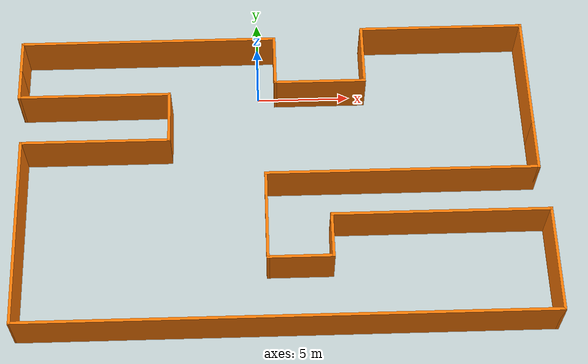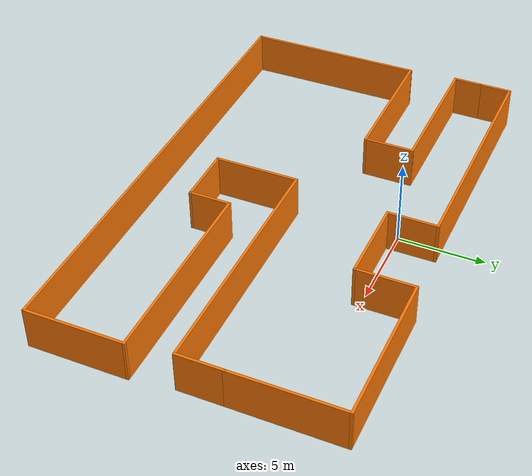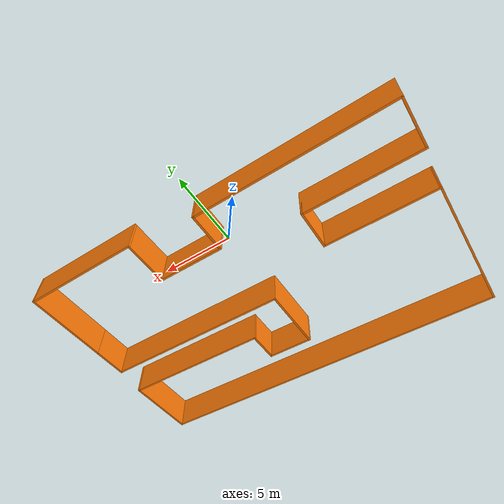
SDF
<?xml version='1.0'?>
<sdf version='1.7'>
  <model name='building'>
    <pose>1.05222 -5.5624 0 0 -0 0</pose>
    <link name='Wall_31'>
      <collision name='Wall_31_Collision'>
        <geometry>
          <box>
            <size>27.75 0.15 2.5</size>
          </box>
        </geometry>
        <pose>0 0 1.25 0 -0 0</pose>
      </collision>
      <visual name='Wall_31_Visual'>
        <pose>0 0 1.25 0 -0 0</pose>
        <geometry>
          <box>
            <size>27.75 0.15 2.5</size>
          </box>
        </geometry>
        <material>
          <script>
            <uri>file://media/materials/scripts/gazebo.material</uri>
            <name>Gazebo/Grey</name>
          </script>
          <ambient>0.996078 0.47451 0.0196078 1</ambient>
        </material>
        <meta>
          <layer>0</layer>
        </meta>
      </visual>
      <pose>0.149999 -8.52482 0 0 -0 0</pose>
    </link>
    <link name='Wall_32'>
      <collision name='Wall_32_Collision'>
        <geometry>
          <box>
            <size>5.75 0.15 2.5</size>
          </box>
        </geometry>
        <pose>0 0 1.25 0 -0 0</pose>
      </collision>
      <visual name='Wall_32_Visual'>
        <pose>0 0 1.25 0 -0 0</pose>
        <geometry>
          <box>
            <size>5.75 0.15 2.5</size>
          </box>
        </geometry>
        <material>
          <script>
            <uri>file://media/materials/scripts/gazebo.material</uri>
            <name>Gazebo/Grey</name>
          </script>
          <ambient>0.996078 0.47451 0.0196078 1</ambient>
        </material>
        <meta>
          <layer>0</layer>
        </meta>
      </visual>
      <pose>13.95 -5.72482 0 0 -0 1.5708</pose>
    </link>
    <link name='Wall_33'>
      <collision name='Wall_33_Collision'>
        <geometry>
          <box>
            <size>11.5 0.15 2.5</size>
          </box>
        </geometry>
        <pose>0 0 1.25 0 -0 0</pose>
      </collision>
      <visual name='Wall_33_Visual'>
        <pose>0 0 1.25 0 -0 0</pose>
        <geometry>
          <box>
            <size>11.5 0.15 2.5</size>
          </box>
        </geometry>
        <material>
          <script>
            <uri>file://media/materials/scripts/gazebo.material</uri>
            <name>Gazebo/Grey</name>
          </script>
          <ambient>0.996078 0.47451 0.0196078 1</ambient>
        </material>
        <meta>
          <layer>0</layer>
        </meta>
      </visual>
      <pose>8.275 -2.92482 0 0 -0 3.14159</pose>
    </link>
    <link name='Wall_34'>
      <collision name='Wall_34_Collision'>
        <geometry>
          <box>
            <size>2.5 0.15 2.5</size>
          </box>
        </geometry>
        <pose>0 0 1.25 0 -0 0</pose>
      </collision>
      <visual name='Wall_34_Visual'>
        <pose>0 0 1.25 0 -0 0</pose>
        <geometry>
          <box>
            <size>2.5 0.15 2.5</size>
          </box>
        </geometry>
        <material>
          <script>
            <uri>file://media/materials/scripts/gazebo.material</uri>
            <name>Gazebo/Grey</name>
          </script>
          <ambient>0.996078 0.47451 0.0196078 1</ambient>
        </material>
        <meta>
          <layer>0</layer>
        </meta>
      </visual>
      <pose>2.6 -4.09982 0 0 -0 -1.5708</pose>
    </link>
    <link name='Wall_35'>
      <collision name='Wall_35_Collision'>
        <geometry>
          <box>
            <size>3.5 0.15 2.5</size>
          </box>
        </geometry>
        <pose>0 0 1.25 0 -0 0</pose>
      </collision>
      <visual name='Wall_35_Visual'>
        <pose>0 0 1.25 0 -0 0</pose>
        <geometry>
          <box>
            <size>3.5 0.15 2.5</size>
          </box>
        </geometry>
        <material>
          <script>
            <uri>file://media/materials/scripts/gazebo.material</uri>
            <name>Gazebo/Grey</name>
          </script>
          <ambient>0.996078 0.47451 0.0196078 1</ambient>
        </material>
        <meta>
          <layer>0</layer>
        </meta>
      </visual>
      <pose>0.924999 -5.27482 0 0 -0 3.14159</pose>
    </link>
    <link name='Wall_36'>
      <collision name='Wall_36_Collision'>
        <geometry>
          <box>
            <size>5 0.15 2.5</size>
          </box>
        </geometry>
        <pose>0 0 1.25 0 -0 0</pose>
      </collision>
      <visual name='Wall_36_Visual'>
        <pose>0 0 1.25 0 -0 0</pose>
        <geometry>
          <box>
            <size>5 0.15 2.5</size>
          </box>
        </geometry>
        <material>
          <script>
            <uri>file://media/materials/scripts/gazebo.material</uri>
            <name>Gazebo/Grey</name>
          </script>
          <ambient>0.996078 0.47451 0.0196078 1</ambient>
        </material>
        <meta>
          <layer>0</layer>
        </meta>
      </visual>
      <pose>-0.750001 -2.84982 0 0 -0 1.5708</pose>
    </link>
    <link name='Wall_37'>
      <collision name='Wall_37_Collision'>
        <geometry>
          <box>
            <size>14.5 0.15 2.5</size>
          </box>
        </geometry>
        <pose>0 0 1.25 0 -0 0</pose>
      </collision>
      <visual name='Wall_37_Visual'>
        <pose>0 0 1.25 0 -0 0</pose>
        <geometry>
          <box>
            <size>14.5 0.15 2.5</size>
          </box>
        </geometry>
        <material>
          <script>
            <uri>file://media/materials/scripts/gazebo.material</uri>
            <name>Gazebo/Grey</name>
          </script>
          <ambient>0.996078 0.47451 0.0196078 1</ambient>
        </material>
        <meta>
          <layer>0</layer>
        </meta>
      </visual>
      <pose>6.425 -0.424818 0 0 -0 0</pose>
    </link>
    <link name='Wall_38'>
      <collision name='Wall_38_Collision'>
        <geometry>
          <box>
            <size>2.75 0.15 2.5</size>
          </box>
        </geometry>
        <pose>0 0 1.25 0 -0 0</pose>
      </collision>
      <visual name='Wall_38_Visual'>
        <pose>0 0 1.25 0 -0 0</pose>
        <geometry>
          <box>
            <size>2.75 0.15 2.5</size>
          </box>
        </geometry>
        <material>
          <script>
            <uri>file://media/materials/scripts/gazebo.material</uri>
            <name>Gazebo/Grey</name>
          </script>
          <ambient>0.996078 0.47451 0.0196078 1</ambient>
        </material>
        <meta>
          <layer>0</layer>
        </meta>
      </visual>
      <pose>13.6 0.875182 0 0 -0 1.5708</pose>
    </link>
    <link name='Wall_39'>
      <collision name='Wall_39_Collision'>
        <geometry>
          <box>
            <size>6.5 0.15 2.5</size>
          </box>
        </geometry>
        <pose>0 0 1.25 0 -0 0</pose>
      </collision>
      <visual name='Wall_39_Visual'>
        <pose>0 0 1.25 0 -0 0</pose>
        <geometry>
          <box>
            <size>6.5 0.15 2.5</size>
          </box>
        </geometry>
        <material>
          <script>
            <uri>file://media/materials/scripts/gazebo.material</uri>
            <name>Gazebo/Grey</name>
          </script>
          <ambient>0.996078 0.47451 0.0196078 1</ambient>
        </material>
        <meta>
          <layer>0</layer>
        </meta>
      </visual>
      <pose>13.6 5.35018 0 0 -0 1.5708</pose>
    </link>
    <link name='Wall_40'>
      <collision name='Wall_40_Collision'>
        <geometry>
          <box>
            <size>9 0.15 2.5</size>
          </box>
        </geometry>
        <pose>0 0 1.25 0 -0 0</pose>
      </collision>
      <visual name='Wall_40_Visual'>
        <pose>0 0 1.25 0 -0 0</pose>
        <geometry>
          <box>
            <size>9 0.15 2.5</size>
          </box>
        </geometry>
        <material>
          <script>
            <uri>file://media/materials/scripts/gazebo.material</uri>
            <name>Gazebo/Grey</name>
          </script>
          <ambient>0.996078 0.47451 0.0196078 1</ambient>
        </material>
        <meta>
          <layer>0</layer>
        </meta>
      </visual>
      <pose>9.175 8.52518 0 0 -0 3.14159</pose>
    </link>
    <link name='Wall_41'>
      <collision name='Wall_41_Collision'>
        <geometry>
          <box>
            <size>3.5 0.15 2.5</size>
          </box>
        </geometry>
        <pose>0 0 1.25 0 -0 0</pose>
      </collision>
      <visual name='Wall_41_Visual'>
        <pose>0 0 1.25 0 -0 0</pose>
        <geometry>
          <box>
            <size>3.5 0.15 2.5</size>
          </box>
        </geometry>
        <material>
          <script>
            <uri>file://media/materials/scripts/gazebo.material</uri>
            <name>Gazebo/Grey</name>
          </script>
          <ambient>0.996078 0.47451 0.0196078 1</ambient>
        </material>
        <meta>
          <layer>0</layer>
        </meta>
      </visual>
      <pose>4.75 6.85018 0 0 -0 -1.5708</pose>
    </link>
    <link name='Wall_42'>
      <collision name='Wall_42_Collision'>
        <geometry>
          <box>
            <size>5 0.15 2.5</size>
          </box>
        </geometry>
        <pose>0 0 1.25 0 -0 0</pose>
      </collision>
      <visual name='Wall_42_Visual'>
        <pose>0 0 1.25 0 -0 0</pose>
        <geometry>
          <box>
            <size>5 0.15 2.5</size>
          </box>
        </geometry>
        <material>
          <script>
            <uri>file://media/materials/scripts/gazebo.material</uri>
            <name>Gazebo/Grey</name>
          </script>
          <ambient>0.996078 0.47451 0.0196078 1</ambient>
        </material>
        <meta>
          <layer>0</layer>
        </meta>
      </visual>
      <pose>2.325 5.17518 0 0 -0 3.14159</pose>
    </link>
    <link name='Wall_43'>
      <collision name='Wall_43_Collision'>
        <geometry>
          <box>
            <size>3 0.15 2.5</size>
          </box>
        </geometry>
        <pose>0 0 1.25 0 -0 0</pose>
      </collision>
      <visual name='Wall_43_Visual'>
        <pose>0 0 1.25 0 -0 0</pose>
        <geometry>
          <box>
            <size>3 0.15 2.5</size>
          </box>
        </geometry>
        <material>
          <script>
            <uri>file://media/materials/scripts/gazebo.material</uri>
            <name>Gazebo/Grey</name>
          </script>
          <ambient>0.996078 0.47451 0.0196078 1</ambient>
        </material>
        <meta>
          <layer>0</layer>
        </meta>
      </visual>
      <pose>-0.100001 6.60018 0 0 -0 1.5708</pose>
    </link>
    <link name='Wall_44'>
      <collision name='Wall_44_Collision'>
        <geometry>
          <box>
            <size>14 0.15 2.5</size>
          </box>
        </geometry>
        <pose>0 0 1.25 0 -0 0</pose>
      </collision>
      <visual name='Wall_44_Visual'>
        <pose>0 0 1.25 0 -0 0</pose>
        <geometry>
          <box>
            <size>14 0.15 2.5</size>
          </box>
        </geometry>
        <material>
          <script>
            <uri>file://media/materials/scripts/gazebo.material</uri>
            <name>Gazebo/Grey</name>
          </script>
          <ambient>0.996078 0.47451 0.0196078 1</ambient>
        </material>
        <meta>
          <layer>0</layer>
        </meta>
      </visual>
      <pose>-7.025 8.02518 0 0 -0 3.14159</pose>
    </link>
    <link name='Wall_45'>
      <collision name='Wall_45_Collision'>
        <geometry>
          <box>
            <size>2 0.15 2.5</size>
          </box>
        </geometry>
        <pose>0 0 1.25 0 -0 0</pose>
      </collision>
      <visual name='Wall_45_Visual'>
        <pose>0 0 1.25 0 -0 0</pose>
        <geometry>
          <box>
            <size>2 0.15 2.5</size>
          </box>
        </geometry>
        <material>
          <script>
            <uri>file://media/materials/scripts/gazebo.material</uri>
            <name>Gazebo/Grey</name>
          </script>
          <ambient>0.996078 0.47451 0.0196078 1</ambient>
        </material>
        <meta>
          <layer>0</layer>
        </meta>
      </visual>
      <pose>-13.95 7.10018 0 0 -0 -1.5708</pose>
    </link>
    <link name='Wall_46'>
      <collision name='Wall_46_Collision'>
        <geometry>
          <box>
            <size>1.75 0.15 2.5</size>
          </box>
        </geometry>
        <pose>0 0 1.25 0 -0 0</pose>
      </collision>
      <visual name='Wall_46_Visual'>
        <pose>0 0 1.25 0 -0 0</pose>
        <geometry>
          <box>
            <size>1.75 0.15 2.5</size>
          </box>
        </geometry>
        <material>
          <script>
            <uri>file://media/materials/scripts/gazebo.material</uri>
            <name>Gazebo/Grey</name>
          </script>
          <ambient>0.996078 0.47451 0.0196078 1</ambient>
        </material>
        <meta>
          <layer>0</layer>
        </meta>
      </visual>
      <pose>-13.95 5.37518 0 0 -0 -1.5708</pose>
    </link>
    <link name='Wall_47'>
      <collision name='Wall_47_Collision'>
        <geometry>
          <box>
            <size>8.25 0.15 2.5</size>
          </box>
        </geometry>
        <pose>0 0 1.25 0 -0 0</pose>
      </collision>
      <visual name='Wall_47_Visual'>
        <pose>0 0 1.25 0 -0 0</pose>
        <geometry>
          <box>
            <size>8.25 0.15 2.5</size>
          </box>
        </geometry>
        <material>
          <script>
            <uri>file://media/materials/scripts/gazebo.material</uri>
            <name>Gazebo/Grey</name>
          </script>
          <ambient>0.996078 0.47451 0.0196078 1</ambient>
        </material>
        <meta>
          <layer>0</layer>
        </meta>
      </visual>
      <pose>-9.9 4.57518 0 0 -0 0</pose>
    </link>
    <link name='Wall_48'>
      <collision name='Wall_48_Collision'>
        <geometry>
          <box>
            <size>3 0.15 2.5</size>
          </box>
        </geometry>
        <pose>0 0 1.25 0 -0 0</pose>
      </collision>
      <visual name='Wall_48_Visual'>
        <pose>0 0 1.25 0 -0 0</pose>
        <geometry>
          <box>
            <size>3 0.15 2.5</size>
          </box>
        </geometry>
        <material>
          <script>
            <uri>file://media/materials/scripts/gazebo.material</uri>
            <name>Gazebo/Grey</name>
          </script>
          <ambient>0.996078 0.47451 0.0196078 1</ambient>
        </material>
        <meta>
          <layer>0</layer>
        </meta>
      </visual>
      <pose>-5.85 3.15018 0 0 -0 -1.5708</pose>
    </link>
    <link name='Wall_49'>
      <collision name='Wall_49_Collision'>
        <geometry>
          <box>
            <size>8 0.15 2.5</size>
          </box>
        </geometry>
        <pose>0 0 1.25 0 -0 0</pose>
      </collision>
      <visual name='Wall_49_Visual'>
        <pose>0 0 1.25 0 -0 0</pose>
        <geometry>
          <box>
            <size>8 0.15 2.5</size>
          </box>
        </geometry>
        <material>
          <script>
            <uri>file://media/materials/scripts/gazebo.material</uri>
            <name>Gazebo/Grey</name>
          </script>
          <ambient>0.996078 0.47451 0.0196078 1</ambient>
        </material>
        <meta>
          <layer>0</layer>
        </meta>
      </visual>
      <pose>-9.775 1.72518 0 0 -0 3.14159</pose>
    </link>
    <link name='Wall_51'>
      <collision name='Wall_51_Collision'>
        <geometry>
          <box>
            <size>10.4001 0.15 2.5</size>
          </box>
        </geometry>
        <pose>0 0 1.25 0 -0 0</pose>
      </collision>
      <visual name='Wall_51_Visual'>
        <pose>0 0 1.25 0 -0 0</pose>
        <geometry>
          <box>
            <size>10.4001 0.15 2.5</size>
          </box>
        </geometry>
        <material>
          <script>
            <uri>file://media/materials/scripts/gazebo.material</uri>
            <name>Gazebo/Grey</name>
          </script>
          <ambient>0.996078 0.47451 0.0196078 1</ambient>
        </material>
        <meta>
          <layer>0</layer>
        </meta>
      </visual>
      <pose>-13.675 -3.39982 0 0 -0 1.57567</pose>
    </link>
    <static>1</static>
  </model>
</sdf>
